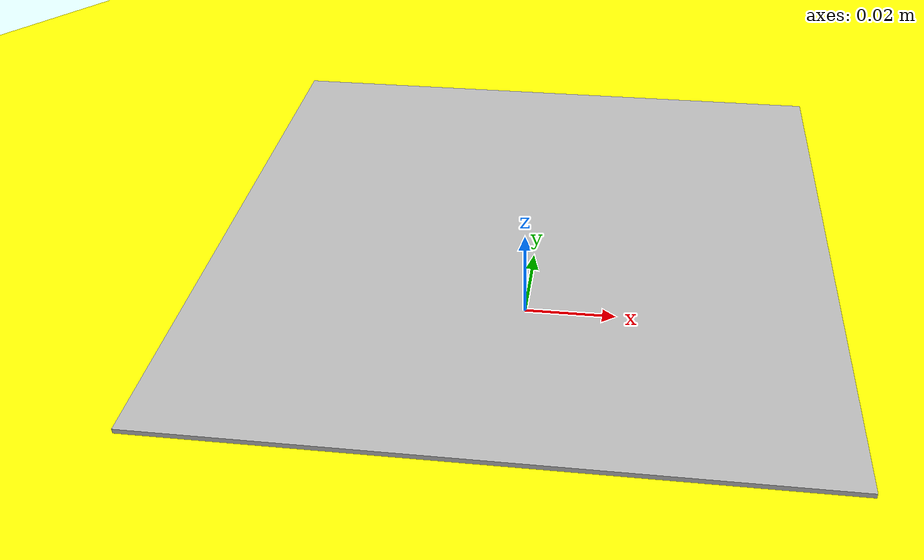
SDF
<?xml version="1.0"?>
<sdf version="1.5">
  <model name="aruco_204">
    <static>true</static>
    <link name="marker_204_link">
      <pose>0 0 0.02 0 0 1.5707963267948966</pose>
      <visual name="visual_marker_204">
        <cast_shadows>false</cast_shadows>
        <geometry>
          <box>
            <size>0.125 0.125 1e-3</size>
          </box>
        </geometry>
        <material>
          <script>
            <uri>model://aruco_204/materials/scripts</uri>
            <uri>model://aruco_204/materials/textures</uri>
            <name>aruco/marker_204</name>
          </script>
        </material>
      </visual>
    </link>

    <link name='island'>
      <inertial>
        <mass>1</mass>
        <inertia>
          <ixx>0.145833</ixx>
          <ixy>0</ixy>
          <ixz>0</ixz>
          <iyy>0.145833</iyy>
          <iyz>0</iyz>
          <izz>0.125</izz>
        </inertia>
        <pose frame=''>0 0 0 0 -0 0</pose>
      </inertial>
      <self_collide>0</self_collide>
      <enable_wind>0</enable_wind>
      <kinematic>0</kinematic>
      <pose frame=''>0 0 0 0 -0 0</pose>
      <gravity>1</gravity>
      <visual name='visual'>
        <geometry>
          <cylinder>
            <radius>0.2</radius>
            <length>0.02</length>
          </cylinder>
        </geometry>
        <material>
          <script>
            <name>Gazebo/Grey</name>
            <uri>file://media/materials/scripts/gazebo.material</uri>
          </script>
          <shader type='pixel'>
            <normal_map>__default__</normal_map>
          </shader>
          <ambient>1 1 0 1</ambient>
          <diffuse>1 1 0 1</diffuse>
          <specular>0 0 0 1</specular>
          <emissive>0 0 0 1</emissive>
        </material>
        <pose frame=''>0 0 0 0 -0 0</pose>
        <transparency>0</transparency>
        <cast_shadows>1</cast_shadows>
      </visual>
      <collision name='collision'>
        <laser_retro>0</laser_retro>
        <max_contacts>10</max_contacts>
        <pose frame=''>0 0 0 0 -0 0</pose>
        <geometry>
          <cylinder>
            <radius>0.2</radius>
            <length>0.02</length>
          </cylinder>
        </geometry>
        <surface>
          <friction>
            <ode>
              <mu>1</mu>
              <mu2>1</mu2>
              <fdir1>0 0 0</fdir1>
              <slip1>0</slip1>
              <slip2>0</slip2>
            </ode>
            <torsional>
              <coefficient>1</coefficient>
              <patch_radius>0</patch_radius>
              <surface_radius>0</surface_radius>
              <use_patch_radius>1</use_patch_radius>
              <ode>
                <slip>0</slip>
              </ode>
            </torsional>
          </friction>
          <bounce>
            <restitution_coefficient>0</restitution_coefficient>
            <threshold>1e+06</threshold>
          </bounce>
          <contact>
            <collide_without_contact>0</collide_without_contact>
            <collide_without_contact_bitmask>1</collide_without_contact_bitmask>
            <collide_bitmask>1</collide_bitmask>
            <ode>
              <soft_cfm>0</soft_cfm>
              <soft_erp>0.2</soft_erp>
              <kp>1e+13</kp>
              <kd>1</kd>
              <max_vel>0.01</max_vel>
              <min_depth>0</min_depth>
            </ode>
            <bullet>
              <split_impulse>1</split_impulse>
              <split_impulse_penetration_threshold>-0.01</split_impulse_penetration_threshold>
              <soft_cfm>0</soft_cfm>
              <soft_erp>0.2</soft_erp>
              <kp>1e+13</kp>
              <kd>1</kd>
            </bullet>
          </contact>
        </surface>
      </collision>
    </link>

  </model>
</sdf>
